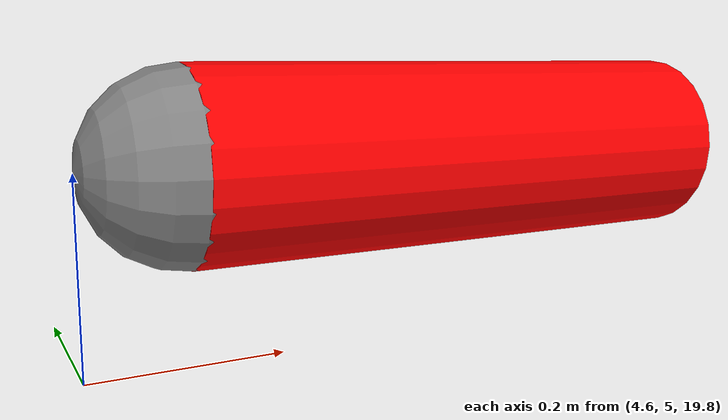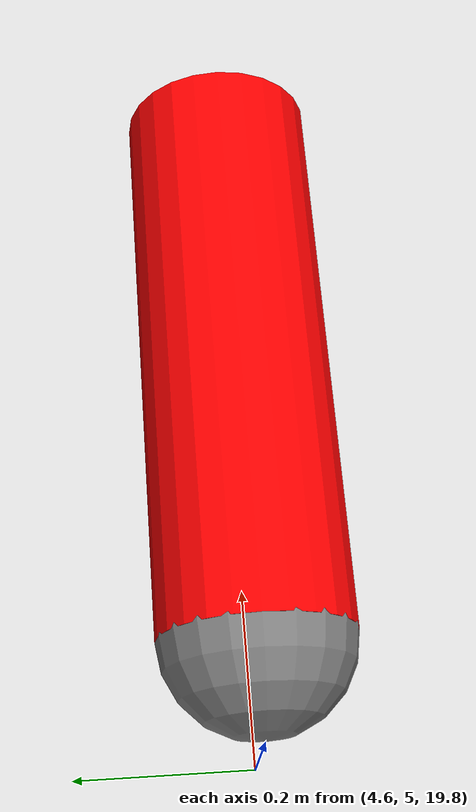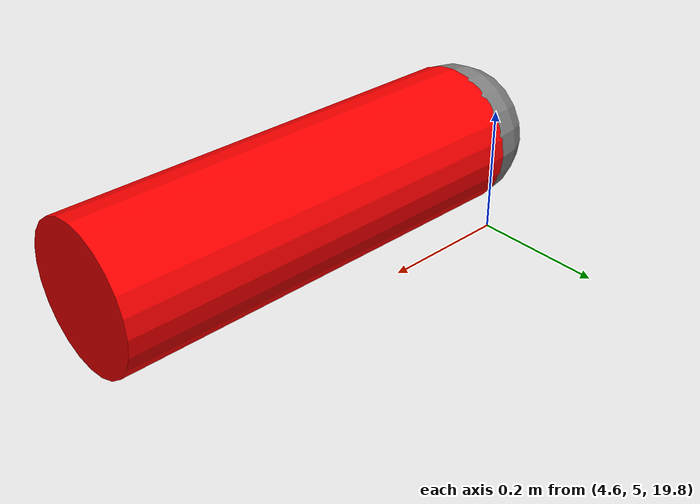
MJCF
<mujoco>

    <asset>
      <texture name="grid" type="2d" builtin="checker" rgb1=".1 .2 .3"
       rgb2=".2 .3 .4" width="300" height="300" mark="none"/>
      <material name="grid" texture="grid" texrepeat="1 1"
       texuniform="true" reflectance=".2"/>
    </asset>

    <worldbody>
      <light name="lightMain" mode = "fixed" pos="0 0 1"/>
      <geom name="floor" type="plane" pos="0 0 -.1" size="2 2 .1" material="grid"/>

      <body name="rocket" pos="5 5 20" euler="0 90 0">
        <light name="light" mode = "track" pos="0 0 1"/>
        <camera name="fixed" mode = "track" pos="0 -1.3 .5" xyaxes="1 0 0 0 1 2"/>
        <joint name="free" type="free"/>
        <geom name="body" type="cylinder" size=".1 .3" rgba="1 0 0 1"/>
        <site name="thrust_point" pos="0 0 -0.3" size="0.1"/>
      </body>

    </worldbody>

    <actuator>
      <motor name="thrust_x" site="thrust_point" gear="1 0 0 0 0 0"/>
      <motor name="thrust_y" site="thrust_point" gear="0 1 0 0 0 0"/>
      <motor name="thrust_z" site="thrust_point" gear="0 0 1 0 0 0"/>

    </actuator>

  </mujoco>
